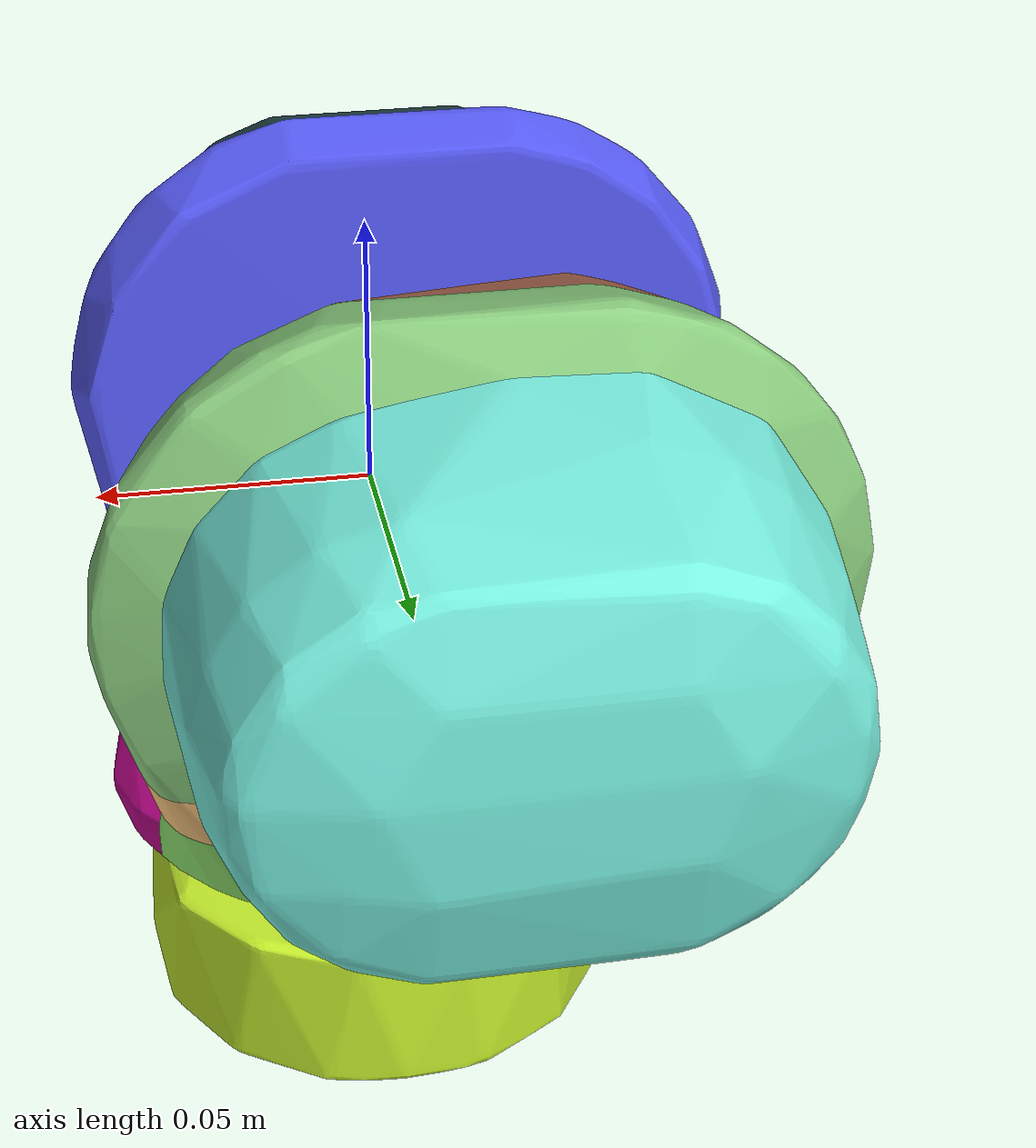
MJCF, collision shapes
<mujoco model="arm_link_sh0">
  <default>
    <default class="visual">
      <geom group="2" type="mesh" contype="0" conaffinity="0"/>
    </default>
    <default class="collision">
      <geom group="3" type="mesh"/>
    </default>
  </default>
  <asset>
    <material name="material_0" specular="1.0" shininess="0.2" rgba="0.27450980 0.27450980 0.27450980 1.0"/>
    <mesh file="arm_link_sh0.obj"/>
    <mesh file="arm_link_sh0_collision_0.obj"/>
    <mesh file="arm_link_sh0_collision_1.obj"/>
    <mesh file="arm_link_sh0_collision_2.obj"/>
    <mesh file="arm_link_sh0_collision_3.obj"/>
    <mesh file="arm_link_sh0_collision_4.obj"/>
    <mesh file="arm_link_sh0_collision_5.obj"/>
    <mesh file="arm_link_sh0_collision_6.obj"/>
    <mesh file="arm_link_sh0_collision_7.obj"/>
    <mesh file="arm_link_sh0_collision_8.obj"/>
    <mesh file="arm_link_sh0_collision_9.obj"/>
    <mesh file="arm_link_sh0_collision_10.obj"/>
    <mesh file="arm_link_sh0_collision_11.obj"/>
    <mesh file="arm_link_sh0_collision_12.obj"/>
    <mesh file="arm_link_sh0_collision_13.obj"/>
    <mesh file="arm_link_sh0_collision_14.obj"/>
    <mesh file="arm_link_sh0_collision_15.obj"/>
    <mesh file="arm_link_sh0_collision_16.obj"/>
    <mesh file="arm_link_sh0_collision_17.obj"/>
    <mesh file="arm_link_sh0_collision_18.obj"/>
    <mesh file="arm_link_sh0_collision_19.obj"/>
  </asset>
  <worldbody>
    <body name="arm_link_sh0">
      <geom material="material_0" mesh="arm_link_sh0" class="visual"/>
      <geom mesh="arm_link_sh0_collision_0" rgba="0.6282412831603428 0.8639247143118562 0.7875624669313425 1" class="collision"/>
      <geom mesh="arm_link_sh0_collision_1" rgba="0.26227727277669755 0.7685438815141745 0.22030861191593987 1" class="collision"/>
      <geom mesh="arm_link_sh0_collision_2" rgba="0.7717761243507836 0.9325686078612384 0.17030753438408586 1" class="collision"/>
      <geom mesh="arm_link_sh0_collision_3" rgba="0.07814490786404993 0.9083006445165451 0.9296464709268842 1" class="collision"/>
      <geom mesh="arm_link_sh0_collision_4" rgba="0.45949097172662834 0.9218552883940587 0.8599469814504059 1" class="collision"/>
      <geom mesh="arm_link_sh0_collision_5" rgba="0.5429897278975339 0.8748376889371211 0.41715981728770946 1" class="collision"/>
      <geom mesh="arm_link_sh0_collision_6" rgba="0.13217684500635052 0.26743063073022977 0.2708146731219847 1" class="collision"/>
      <geom mesh="arm_link_sh0_collision_7" rgba="0.3392782518162307 0.35446681725603113 0.9588217773197297 1" class="collision"/>
      <geom mesh="arm_link_sh0_collision_8" rgba="0.6139487833590159 0.8760289508207906 0.4407627837952891 1" class="collision"/>
      <geom mesh="arm_link_sh0_collision_9" rgba="0.27612295517766583 0.7887999746222515 0.9436405569264198 1" class="collision"/>
      <geom mesh="arm_link_sh0_collision_10" rgba="0.01897303629262237 0.10527202300659311 0.26821849213279747 1" class="collision"/>
      <geom mesh="arm_link_sh0_collision_11" rgba="0.5533275199728092 0.1330832614638079 0.1438641802978039 1" class="collision"/>
      <geom mesh="arm_link_sh0_collision_12" rgba="0.6643767968278549 0.3951976597644067 0.31007278632909163 1" class="collision"/>
      <geom mesh="arm_link_sh0_collision_13" rgba="0.7954287898225514 0.029767428212332914 0.5781366945575764 1" class="collision"/>
      <geom mesh="arm_link_sh0_collision_14" rgba="0.544114378758793 0.8022651972081409 0.49630511456028104 1" class="collision"/>
      <geom mesh="arm_link_sh0_collision_15" rgba="0.007756174955611539 0.45265135938095724 0.31775844796260133 1" class="collision"/>
      <geom mesh="arm_link_sh0_collision_16" rgba="0.9750356625408592 0.7688081005246394 0.4845192895716718 1" class="collision"/>
      <geom mesh="arm_link_sh0_collision_17" rgba="0.9332125726966939 0.3313150636506964 0.9886015582090395 1" class="collision"/>
      <geom mesh="arm_link_sh0_collision_18" rgba="0.4167449097596183 0.6279750301034406 0.5466802851483236 1" class="collision"/>
      <geom mesh="arm_link_sh0_collision_19" rgba="0.6157814526356835 0.7774838599505949 0.3332622780182525 1" class="collision"/>
    </body>
  </worldbody>
</mujoco>
